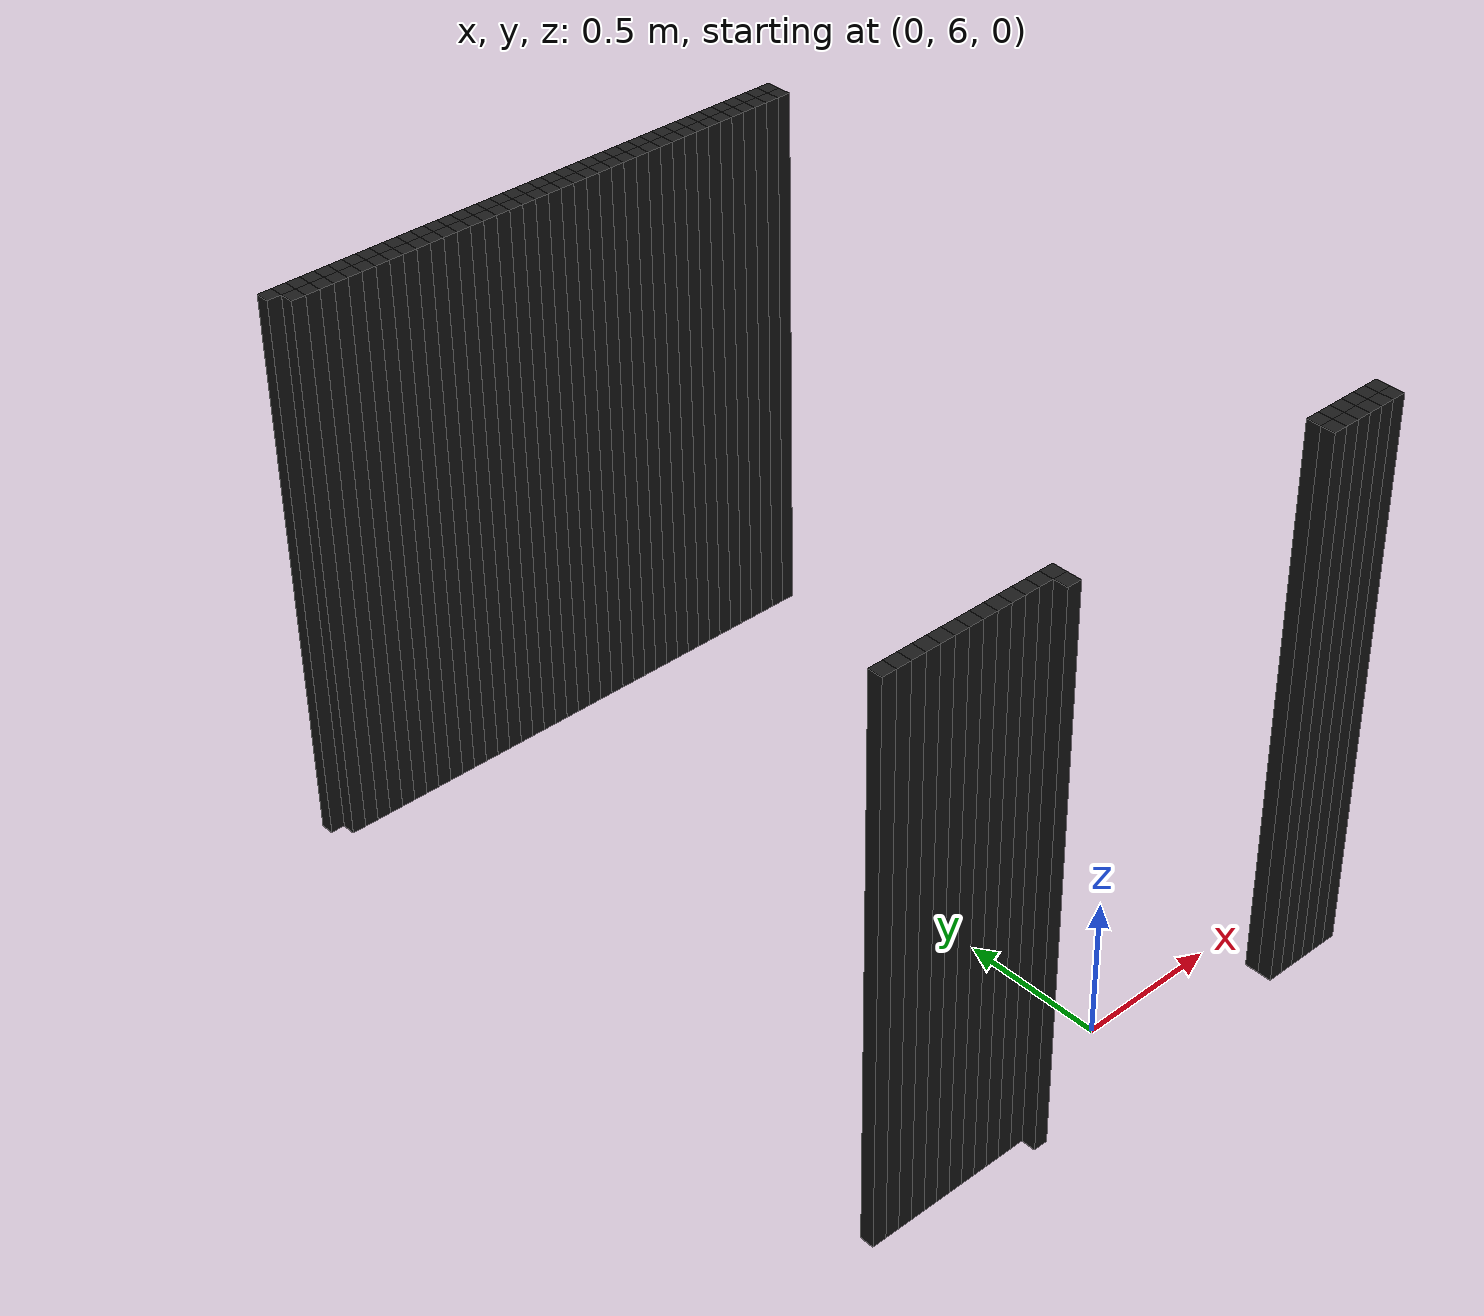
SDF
<sdf version="1.6">
 <model name="obstacle_68_0">
  <pose>-1.1099999999999994 8.350000000000001 1.0 0 0 0</pose>
  <static>true</static>
  <link name="box_link">
   <collision name="box_collision"><geometry><box><size>0.05 0.05 2.0</size></box></geometry></collision>
   <visual name="box_visual">
    <geometry><box><size>0.05 0.05 2.0</size></box></geometry>
    <material><ambient>0 0 0 1</ambient><diffuse>0.1 0.1 0.1 1</diffuse></material>
   </visual>
  </link>
 </model>
 <model name="obstacle_69_0">
  <pose>-1.0599999999999996 8.350000000000001 1.0 0 0 0</pose>
  <static>true</static>
  <link name="box_link">
   <collision name="box_collision"><geometry><box><size>0.05 0.05 2.0</size></box></geometry></collision>
   <visual name="box_visual">
    <geometry><box><size>0.05 0.05 2.0</size></box></geometry>
    <material><ambient>0 0 0 1</ambient><diffuse>0.1 0.1 0.1 1</diffuse></material>
   </visual>
  </link>
 </model>
 <model name="obstacle_70_0">
  <pose>-1.0099999999999998 8.350000000000001 1.0 0 0 0</pose>
  <static>true</static>
  <link name="box_link">
   <collision name="box_collision"><geometry><box><size>0.05 0.05 2.0</size></box></geometry></collision>
   <visual name="box_visual">
    <geometry><box><size>0.05 0.05 2.0</size></box></geometry>
    <material><ambient>0 0 0 1</ambient><diffuse>0.1 0.1 0.1 1</diffuse></material>
   </visual>
  </link>
 </model>
 <model name="obstacle_71_0">
  <pose>-0.9599999999999995 8.350000000000001 1.0 0 0 0</pose>
  <static>true</static>
  <link name="box_link">
   <collision name="box_collision"><geometry><box><size>0.05 0.05 2.0</size></box></geometry></collision>
   <visual name="box_visual">
    <geometry><box><size>0.05 0.05 2.0</size></box></geometry>
    <material><ambient>0 0 0 1</ambient><diffuse>0.1 0.1 0.1 1</diffuse></material>
   </visual>
  </link>
 </model>
 <model name="obstacle_72_0">
  <pose>-0.9099999999999997 8.350000000000001 1.0 0 0 0</pose>
  <static>true</static>
  <link name="box_link">
   <collision name="box_collision"><geometry><box><size>0.05 0.05 2.0</size></box></geometry></collision>
   <visual name="box_visual">
    <geometry><box><size>0.05 0.05 2.0</size></box></geometry>
    <material><ambient>0 0 0 1</ambient><diffuse>0.1 0.1 0.1 1</diffuse></material>
   </visual>
  </link>
 </model>
 <model name="obstacle_73_0">
  <pose>-0.8599999999999994 8.350000000000001 1.0 0 0 0</pose>
  <static>true</static>
  <link name="box_link">
   <collision name="box_collision"><geometry><box><size>0.05 0.05 2.0</size></box></geometry></collision>
   <visual name="box_visual">
    <geometry><box><size>0.05 0.05 2.0</size></box></geometry>
    <material><ambient>0 0 0 1</ambient><diffuse>0.1 0.1 0.1 1</diffuse></material>
   </visual>
  </link>
 </model>
 <model name="obstacle_74_0">
  <pose>-0.8099999999999996 8.350000000000001 1.0 0 0 0</pose>
  <static>true</static>
  <link name="box_link">
   <collision name="box_collision"><geometry><box><size>0.05 0.05 2.0</size></box></geometry></collision>
   <visual name="box_visual">
    <geometry><box><size>0.05 0.05 2.0</size></box></geometry>
    <material><ambient>0 0 0 1</ambient><diffuse>0.1 0.1 0.1 1</diffuse></material>
   </visual>
  </link>
 </model>
 <model name="obstacle_75_0">
  <pose>-0.7599999999999998 8.350000000000001 1.0 0 0 0</pose>
  <static>true</static>
  <link name="box_link">
   <collision name="box_collision"><geometry><box><size>0.05 0.05 2.0</size></box></geometry></collision>
   <visual name="box_visual">
    <geometry><box><size>0.05 0.05 2.0</size></box></geometry>
    <material><ambient>0 0 0 1</ambient><diffuse>0.1 0.1 0.1 1</diffuse></material>
   </visual>
  </link>
 </model>
 <model name="obstacle_76_0">
  <pose>-0.7099999999999995 8.350000000000001 1.0 0 0 0</pose>
  <static>true</static>
  <link name="box_link">
   <collision name="box_collision"><geometry><box><size>0.05 0.05 2.0</size></box></geometry></collision>
   <visual name="box_visual">
    <geometry><box><size>0.05 0.05 2.0</size></box></geometry>
    <material><ambient>0 0 0 1</ambient><diffuse>0.1 0.1 0.1 1</diffuse></material>
   </visual>
  </link>
 </model>
 <model name="obstacle_77_0">
  <pose>-0.6599999999999997 8.350000000000001 1.0 0 0 0</pose>
  <static>true</static>
  <link name="box_link">
   <collision name="box_collision"><geometry><box><size>0.05 0.05 2.0</size></box></geometry></collision>
   <visual name="box_visual">
    <geometry><box><size>0.05 0.05 2.0</size></box></geometry>
    <material><ambient>0 0 0 1</ambient><diffuse>0.1 0.1 0.1 1</diffuse></material>
   </visual>
  </link>
 </model>
 <model name="obstacle_78_0">
  <pose>-0.6099999999999994 8.350000000000001 1.0 0 0 0</pose>
  <static>true</static>
  <link name="box_link">
   <collision name="box_collision"><geometry><box><size>0.05 0.05 2.0</size></box></geometry></collision>
   <visual name="box_visual">
    <geometry><box><size>0.05 0.05 2.0</size></box></geometry>
    <material><ambient>0 0 0 1</ambient><diffuse>0.1 0.1 0.1 1</diffuse></material>
   </visual>
  </link>
 </model>
 <model name="obstacle_79_0">
  <pose>-0.5599999999999996 8.350000000000001 1.0 0 0 0</pose>
  <static>true</static>
  <link name="box_link">
   <collision name="box_collision"><geometry><box><size>0.05 0.05 2.0</size></box></geometry></collision>
   <visual name="box_visual">
    <geometry><box><size>0.05 0.05 2.0</size></box></geometry>
    <material><ambient>0 0 0 1</ambient><diffuse>0.1 0.1 0.1 1</diffuse></material>
   </visual>
  </link>
 </model>
 <model name="obstacle_80_0">
  <pose>-0.5099999999999998 8.350000000000001 1.0 0 0 0</pose>
  <static>true</static>
  <link name="box_link">
   <collision name="box_collision"><geometry><box><size>0.05 0.05 2.0</size></box></geometry></collision>
   <visual name="box_visual">
    <geometry><box><size>0.05 0.05 2.0</size></box></geometry>
    <material><ambient>0 0 0 1</ambient><diffuse>0.1 0.1 0.1 1</diffuse></material>
   </visual>
  </link>
 </model>
 <model name="obstacle_81_0">
  <pose>-0.45999999999999996 8.350000000000001 1.0 0 0 0</pose>
  <static>true</static>
  <link name="box_link">
   <collision name="box_collision"><geometry><box><size>0.05 0.05 2.0</size></box></geometry></collision>
   <visual name="box_visual">
    <geometry><box><size>0.05 0.05 2.0</size></box></geometry>
    <material><ambient>0 0 0 1</ambient><diffuse>0.1 0.1 0.1 1</diffuse></material>
   </visual>
  </link>
 </model>
 <model name="obstacle_82_0">
  <pose>-0.40999999999999925 8.350000000000001 1.0 0 0 0</pose>
  <static>true</static>
  <link name="box_link">
   <collision name="box_collision"><geometry><box><size>0.05 0.05 2.0</size></box></geometry></collision>
   <visual name="box_visual">
    <geometry><box><size>0.05 0.05 2.0</size></box></geometry>
    <material><ambient>0 0 0 1</ambient><diffuse>0.1 0.1 0.1 1</diffuse></material>
   </visual>
  </link>
 </model>
 <model name="obstacle_83_0">
  <pose>-0.35999999999999943 8.350000000000001 1.0 0 0 0</pose>
  <static>true</static>
  <link name="box_link">
   <collision name="box_collision"><geometry><box><size>0.05 0.05 2.0</size></box></geometry></collision>
   <visual name="box_visual">
    <geometry><box><size>0.05 0.05 2.0</size></box></geometry>
    <material><ambient>0 0 0 1</ambient><diffuse>0.1 0.1 0.1 1</diffuse></material>
   </visual>
  </link>
 </model>
 <model name="obstacle_84_0">
  <pose>-0.3099999999999996 8.350000000000001 1.0 0 0 0</pose>
  <static>true</static>
  <link name="box_link">
   <collision name="box_collision"><geometry><box><size>0.05 0.05 2.0</size></box></geometry></collision>
   <visual name="box_visual">
    <geometry><box><size>0.05 0.05 2.0</size></box></geometry>
    <material><ambient>0 0 0 1</ambient><diffuse>0.1 0.1 0.1 1</diffuse></material>
   </visual>
  </link>
 </model>
 <model name="obstacle_85_0">
  <pose>-0.2599999999999998 8.350000000000001 1.0 0 0 0</pose>
  <static>true</static>
  <link name="box_link">
   <collision name="box_collision"><geometry><box><size>0.05 0.05 2.0</size></box></geometry></collision>
   <visual name="box_visual">
    <geometry><box><size>0.05 0.05 2.0</size></box></geometry>
    <material><ambient>0 0 0 1</ambient><diffuse>0.1 0.1 0.1 1</diffuse></material>
   </visual>
  </link>
 </model>
 <model name="obstacle_86_0">
  <pose>-0.20999999999999996 8.350000000000001 1.0 0 0 0</pose>
  <static>true</static>
  <link name="box_link">
   <collision name="box_collision"><geometry><box><size>0.05 0.05 2.0</size></box></geometry></collision>
   <visual name="box_visual">
    <geometry><box><size>0.05 0.05 2.0</size></box></geometry>
    <material><ambient>0 0 0 1</ambient><diffuse>0.1 0.1 0.1 1</diffuse></material>
   </visual>
  </link>
 </model>
 <model name="obstacle_87_0">
  <pose>-0.15999999999999925 8.350000000000001 1.0 0 0 0</pose>
  <static>true</static>
  <link name="box_link">
   <collision name="box_collision"><geometry><box><size>0.05 0.05 2.0</size></box></geometry></collision>
   <visual name="box_visual">
    <geometry><box><size>0.05 0.05 2.0</size></box></geometry>
    <material><ambient>0 0 0 1</ambient><diffuse>0.1 0.1 0.1 1</diffuse></material>
   </visual>
  </link>
 </model>
 <model name="obstacle_88_0">
  <pose>-0.10999999999999943 8.350000000000001 1.0 0 0 0</pose>
  <static>true</static>
  <link name="box_link">
   <collision name="box_collision"><geometry><box><size>0.05 0.05 2.0</size></box></geometry></collision>
   <visual name="box_visual">
    <geometry><box><size>0.05 0.05 2.0</size></box></geometry>
    <material><ambient>0 0 0 1</ambient><diffuse>0.1 0.1 0.1 1</diffuse></material>
   </visual>
  </link>
 </model>
 <model name="obstacle_89_0">
  <pose>-0.05999999999999961 8.350000000000001 1.0 0 0 0</pose>
  <static>true</static>
  <link name="box_link">
   <collision name="box_collision"><geometry><box><size>0.05 0.05 2.0</size></box></geometry></collision>
   <visual name="box_visual">
    <geometry><box><size>0.05 0.05 2.0</size></box></geometry>
    <material><ambient>0 0 0 1</ambient><diffuse>0.1 0.1 0.1 1</diffuse></material>
   </visual>
  </link>
 </model>
 <model name="obstacle_90_0">
  <pose>-0.009999999999999787 8.350000000000001 1.0 0 0 0</pose>
  <static>true</static>
  <link name="box_link">
   <collision name="box_collision"><geometry><box><size>0.05 0.05 2.0</size></box></geometry></collision>
   <visual name="box_visual">
    <geometry><box><size>0.05 0.05 2.0</size></box></geometry>
    <material><ambient>0 0 0 1</ambient><diffuse>0.1 0.1 0.1 1</diffuse></material>
   </visual>
  </link>
 </model>
 <model name="obstacle_91_0">
  <pose>0.040000000000000036 8.350000000000001 1.0 0 0 0</pose>
  <static>true</static>
  <link name="box_link">
   <collision name="box_collision"><geometry><box><size>0.05 0.05 2.0</size></box></geometry></collision>
   <visual name="box_visual">
    <geometry><box><size>0.05 0.05 2.0</size></box></geometry>
    <material><ambient>0 0 0 1</ambient><diffuse>0.1 0.1 0.1 1</diffuse></material>
   </visual>
  </link>
 </model>
 <model name="obstacle_92_0">
  <pose>0.09000000000000075 8.350000000000001 1.0 0 0 0</pose>
  <static>true</static>
  <link name="box_link">
   <collision name="box_collision"><geometry><box><size>0.05 0.05 2.0</size></box></geometry></collision>
   <visual name="box_visual">
    <geometry><box><size>0.05 0.05 2.0</size></box></geometry>
    <material><ambient>0 0 0 1</ambient><diffuse>0.1 0.1 0.1 1</diffuse></material>
   </visual>
  </link>
 </model>
 <model name="obstacle_93_0">
  <pose>0.14000000000000057 8.350000000000001 1.0 0 0 0</pose>
  <static>true</static>
  <link name="box_link">
   <collision name="box_collision"><geometry><box><size>0.05 0.05 2.0</size></box></geometry></collision>
   <visual name="box_visual">
    <geometry><box><size>0.05 0.05 2.0</size></box></geometry>
    <material><ambient>0 0 0 1</ambient><diffuse>0.1 0.1 0.1 1</diffuse></material>
   </visual>
  </link>
 </model>
 <model name="obstacle_94_0">
  <pose>0.1900000000000004 8.350000000000001 1.0 0 0 0</pose>
  <static>true</static>
  <link name="box_link">
   <collision name="box_collision"><geometry><box><size>0.05 0.05 2.0</size></box></geometry></collision>
   <visual name="box_visual">
    <geometry><box><size>0.05 0.05 2.0</size></box></geometry>
    <material><ambient>0 0 0 1</ambient><diffuse>0.1 0.1 0.1 1</diffuse></material>
   </visual>
  </link>
 </model>
 <model name="obstacle_95_0">
  <pose>0.2400000000000002 8.350000000000001 1.0 0 0 0</pose>
  <static>true</static>
  <link name="box_link">
   <collision name="box_collision"><geometry><box><size>0.05 0.05 2.0</size></box></geometry></collision>
   <visual name="box_visual">
    <geometry><box><size>0.05 0.05 2.0</size></box></geometry>
    <material><ambient>0 0 0 1</ambient><diffuse>0.1 0.1 0.1 1</diffuse></material>
   </visual>
  </link>
 </model>
 <model name="obstacle_96_0">
  <pose>0.2900000000000009 8.350000000000001 1.0 0 0 0</pose>
  <static>true</static>
  <link name="box_link">
   <collision name="box_collision"><geometry><box><size>0.05 0.05 2.0</size></box></geometry></collision>
   <visual name="box_visual">
    <geometry><box><size>0.05 0.05 2.0</size></box></geometry>
    <material><ambient>0 0 0 1</ambient><diffuse>0.1 0.1 0.1 1</diffuse></material>
   </visual>
  </link>
 </model>
 <model name="obstacle_97_0">
  <pose>0.34000000000000075 8.350000000000001 1.0 0 0 0</pose>
  <static>true</static>
  <link name="box_link">
   <collision name="box_collision"><geometry><box><size>0.05 0.05 2.0</size></box></geometry></collision>
   <visual name="box_visual">
    <geometry><box><size>0.05 0.05 2.0</size></box></geometry>
    <material><ambient>0 0 0 1</ambient><diffuse>0.1 0.1 0.1 1</diffuse></material>
   </visual>
  </link>
 </model>
 <model name="obstacle_98_0">
  <pose>0.39000000000000057 8.350000000000001 1.0 0 0 0</pose>
  <static>true</static>
  <link name="box_link">
   <collision name="box_collision"><geometry><box><size>0.05 0.05 2.0</size></box></geometry></collision>
   <visual name="box_visual">
    <geometry><box><size>0.05 0.05 2.0</size></box></geometry>
    <material><ambient>0 0 0 1</ambient><diffuse>0.1 0.1 0.1 1</diffuse></material>
   </visual>
  </link>
 </model>
 <model name="obstacle_99_0">
  <pose>0.4400000000000004 8.350000000000001 1.0 0 0 0</pose>
  <static>true</static>
  <link name="box_link">
   <collision name="box_collision"><geometry><box><size>0.05 0.05 2.0</size></box></geometry></collision>
   <visual name="box_visual">
    <geometry><box><size>0.05 0.05 2.0</size></box></geometry>
    <material><ambient>0 0 0 1</ambient><diffuse>0.1 0.1 0.1 1</diffuse></material>
   </visual>
  </link>
 </model>
 <model name="obstacle_100_0">
  <pose>0.4900000000000002 8.350000000000001 1.0 0 0 0</pose>
  <static>true</static>
  <link name="box_link">
   <collision name="box_collision"><geometry><box><size>0.05 0.05 2.0</size></box></geometry></collision>
   <visual name="box_visual">
    <geometry><box><size>0.05 0.05 2.0</size></box></geometry>
    <material><ambient>0 0 0 1</ambient><diffuse>0.1 0.1 0.1 1</diffuse></material>
   </visual>
  </link>
 </model>
 <model name="obstacle_101_0">
  <pose>0.5400000000000009 8.350000000000001 1.0 0 0 0</pose>
  <static>true</static>
  <link name="box_link">
   <collision name="box_collision"><geometry><box><size>0.05 0.05 2.0</size></box></geometry></collision>
   <visual name="box_visual">
    <geometry><box><size>0.05 0.05 2.0</size></box></geometry>
    <material><ambient>0 0 0 1</ambient><diffuse>0.1 0.1 0.1 1</diffuse></material>
   </visual>
  </link>
 </model>
 <model name="obstacle_102_0">
  <pose>0.5900000000000007 8.350000000000001 1.0 0 0 0</pose>
  <static>true</static>
  <link name="box_link">
   <collision name="box_collision"><geometry><box><size>0.05 0.05 2.0</size></box></geometry></collision>
   <visual name="box_visual">
    <geometry><box><size>0.05 0.05 2.0</size></box></geometry>
    <material><ambient>0 0 0 1</ambient><diffuse>0.1 0.1 0.1 1</diffuse></material>
   </visual>
  </link>
 </model>
 <model name="obstacle_103_0">
  <pose>0.6400000000000006 8.350000000000001 1.0 0 0 0</pose>
  <static>true</static>
  <link name="box_link">
   <collision name="box_collision"><geometry><box><size>0.05 0.05 2.0</size></box></geometry></collision>
   <visual name="box_visual">
    <geometry><box><size>0.05 0.05 2.0</size></box></geometry>
    <material><ambient>0 0 0 1</ambient><diffuse>0.1 0.1 0.1 1</diffuse></material>
   </visual>
  </link>
 </model>
 <model name="obstacle_104_0">
  <pose>0.6900000000000004 8.350000000000001 1.0 0 0 0</pose>
  <static>true</static>
  <link name="box_link">
   <collision name="box_collision"><geometry><box><size>0.05 0.05 2.0</size></box></geometry></collision>
   <visual name="box_visual">
    <geometry><box><size>0.05 0.05 2.0</size></box></geometry>
    <material><ambient>0 0 0 1</ambient><diffuse>0.1 0.1 0.1 1</diffuse></material>
   </visual>
  </link>
 </model>
 <model name="obstacle_105_0">
  <pose>0.7400000000000002 8.350000000000001 1.0 0 0 0</pose>
  <static>true</static>
  <link name="box_link">
   <collision name="box_collision"><geometry><box><size>0.05 0.05 2.0</size></box></geometry></collision>
   <visual name="box_visual">
    <geometry><box><size>0.05 0.05 2.0</size></box></geometry>
    <material><ambient>0 0 0 1</ambient><diffuse>0.1 0.1 0.1 1</diffuse></material>
   </visual>
  </link>
 </model>
 <model name="obstacle_106_0">
  <pose>0.7900000000000009 8.350000000000001 1.0 0 0 0</pose>
  <static>true</static>
  <link name="box_link">
   <collision name="box_collision"><geometry><box><size>0.05 0.05 2.0</size></box></geometry></collision>
   <visual name="box_visual">
    <geometry><box><size>0.05 0.05 2.0</size></box></geometry>
    <material><ambient>0 0 0 1</ambient><diffuse>0.1 0.1 0.1 1</diffuse></material>
   </visual>
  </link>
 </model>
 <model name="obstacle_107_0">
  <pose>0.8400000000000007 8.350000000000001 1.0 0 0 0</pose>
  <static>true</static>
  <link name="box_link">
   <collision name="box_collision"><geometry><box><size>0.05 0.05 2.0</size></box></geometry></collision>
   <visual name="box_visual">
    <geometry><box><size>0.05 0.05 2.0</size></box></geometry>
    <material><ambient>0 0 0 1</ambient><diffuse>0.1 0.1 0.1 1</diffuse></material>
   </visual>
  </link>
 </model>
 <model name="obstacle_69_1">
  <pose>-1.0599999999999996 8.3 1.0 0 0 0</pose>
  <static>true</static>
  <link name="box_link">
   <collision name="box_collision"><geometry><box><size>0.05 0.05 2.0</size></box></geometry></collision>
   <visual name="box_visual">
    <geometry><box><size>0.05 0.05 2.0</size></box></geometry>
    <material><ambient>0 0 0 1</ambient><diffuse>0.1 0.1 0.1 1</diffuse></material>
   </visual>
  </link>
 </model>
 <model name="obstacle_70_1">
  <pose>-1.0099999999999998 8.3 1.0 0 0 0</pose>
  <static>true</static>
  <link name="box_link">
   <collision name="box_collision"><geometry><box><size>0.05 0.05 2.0</size></box></geometry></collision>
   <visual name="box_visual">
    <geometry><box><size>0.05 0.05 2.0</size></box></geometry>
    <material><ambient>0 0 0 1</ambient><diffuse>0.1 0.1 0.1 1</diffuse></material>
   </visual>
  </link>
 </model>
 <model name="obstacle_71_1">
  <pose>-0.9599999999999995 8.3 1.0 0 0 0</pose>
  <static>true</static>
  <link name="box_link">
   <collision name="box_collision"><geometry><box><size>0.05 0.05 2.0</size></box></geometry></collision>
   <visual name="box_visual">
    <geometry><box><size>0.05 0.05 2.0</size></box></geometry>
    <material><ambient>0 0 0 1</ambient><diffuse>0.1 0.1 0.1 1</diffuse></material>
   </visual>
  </link>
 </model>
 <model name="obstacle_72_1">
  <pose>-0.9099999999999997 8.3 1.0 0 0 0</pose>
  <static>true</static>
  <link name="box_link">
   <collision name="box_collision"><geometry><box><size>0.05 0.05 2.0</size></box></geometry></collision>
   <visual name="box_visual">
    <geometry><box><size>0.05 0.05 2.0</size></box></geometry>
    <material><ambient>0 0 0 1</ambient><diffuse>0.1 0.1 0.1 1</diffuse></material>
   </visual>
  </link>
 </model>
 <model name="obstacle_73_1">
  <pose>-0.8599999999999994 8.3 1.0 0 0 0</pose>
  <static>true</static>
  <link name="box_link">
   <collision name="box_collision"><geometry><box><size>0.05 0.05 2.0</size></box></geometry></collision>
   <visual name="box_visual">
    <geometry><box><size>0.05 0.05 2.0</size></box></geometry>
    <material><ambient>0 0 0 1</ambient><diffuse>0.1 0.1 0.1 1</diffuse></material>
   </visual>
  </link>
 </model>
 <model name="obstacle_74_1">
  <pose>-0.8099999999999996 8.3 1.0 0 0 0</pose>
  <static>true</static>
  <link name="box_link">
   <collision name="box_collision"><geometry><box><size>0.05 0.05 2.0</size></box></geometry></collision>
   <visual name="box_visual">
    <geometry><box><size>0.05 0.05 2.0</size></box></geometry>
    <material><ambient>0 0 0 1</ambient><diffuse>0.1 0.1 0.1 1</diffuse></material>
   </visual>
  </link>
 </model>
 <model name="obstacle_75_1">
  <pose>-0.7599999999999998 8.3 1.0 0 0 0</pose>
  <static>true</static>
  <link name="box_link">
   <collision name="box_collision"><geometry><box><size>0.05 0.05 2.0</size></box></geometry></collision>
   <visual name="box_visual">
    <geometry><box><size>0.05 0.05 2.0</size></box></geometry>
    <material><ambient>0 0 0 1</ambient><diffuse>0.1 0.1 0.1 1</diffuse></material>
   </visual>
  </link>
 </model>
 <model name="obstacle_76_1">
  <pose>-0.7099999999999995 8.3 1.0 0 0 0</pose>
  <static>true</static>
  <link name="box_link">
   <collision name="box_collision"><geometry><box><size>0.05 0.05 2.0</size></box></geometry></collision>
   <visual name="box_visual">
    <geometry><box><size>0.05 0.05 2.0</size></box></geometry>
    <material><ambient>0 0 0 1</ambient><diffuse>0.1 0.1 0.1 1</diffuse></material>
   </visual>
  </link>
 </model>
 <model name="obstacle_77_1">
  <pose>-0.6599999999999997 8.3 1.0 0 0 0</pose>
  <static>true</static>
  <link name="box_link">
   <collision name="box_collision"><geometry><box><size>0.05 0.05 2.0</size></box></geometry></collision>
   <visual name="box_visual">
    <geometry><box><size>0.05 0.05 2.0</size></box></geometry>
    <material><ambient>0 0 0 1</ambient><diffuse>0.1 0.1 0.1 1</diffuse></material>
   </visual>
  </link>
 </model>
 <model name="obstacle_78_1">
  <pose>-0.6099999999999994 8.3 1.0 0 0 0</pose>
  <static>true</static>
  <link name="box_link">
   <collision name="box_collision"><geometry><box><size>0.05 0.05 2.0</size></box></geometry></collision>
   <visual name="box_visual">
    <geometry><box><size>0.05 0.05 2.0</size></box></geometry>
    <material><ambient>0 0 0 1</ambient><diffuse>0.1 0.1 0.1 1</diffuse></material>
   </visual>
  </link>
 </model>
 <model name="obstacle_79_1">
  <pose>-0.5599999999999996 8.3 1.0 0 0 0</pose>
  <static>true</static>
  <link name="box_link">
   <collision name="box_collision"><geometry><box><size>0.05 0.05 2.0</size></box></geometry></collision>
   <visual name="box_visual">
    <geometry><box><size>0.05 0.05 2.0</size></box></geometry>
    <material><ambient>0 0 0 1</ambient><diffuse>0.1 0.1 0.1 1</diffuse></material>
   </visual>
  </link>
 </model>
 <model name="obstacle_80_1">
  <pose>-0.5099999999999998 8.3 1.0 0 0 0</pose>
  <static>true</static>
  <link name="box_link">
   <collision name="box_collision"><geometry><box><size>0.05 0.05 2.0</size></box></geometry></collision>
   <visual name="box_visual">
    <geometry><box><size>0.05 0.05 2.0</size></box></geometry>
    <material><ambient>0 0 0 1</ambient><diffuse>0.1 0.1 0.1 1</diffuse></material>
   </visual>
  </link>
 </model>
 <model name="obstacle_81_1">
  <pose>-0.45999999999999996 8.3 1.0 0 0 0</pose>
  <static>true</static>
  <link name="box_link">
   <collision name="box_collision"><geometry><box><size>0.05 0.05 2.0</size></box></geometry></collision>
   <visual name="box_visual">
    <geometry><box><size>0.05 0.05 2.0</size></box></geometry>
    <material><ambient>0 0 0 1</ambient><diffuse>0.1 0.1 0.1 1</diffuse></material>
   </visual>
  </link>
 </model>
 <model name="obstacle_82_1">
  <pose>-0.40999999999999925 8.3 1.0 0 0 0</pose>
  <static>true</static>
  <link name="box_link">
   <collision name="box_collision"><geometry><box><size>0.05 0.05 2.0</size></box></geometry></collision>
   <visual name="box_visual">
    <geometry><box><size>0.05 0.05 2.0</size></box></geometry>
    <material><ambient>0 0 0 1</ambient><diffuse>0.1 0.1 0.1 1</diffuse></material>
   </visual>
  </link>
 </model>
 <model name="obstacle_83_1">
  <pose>-0.35999999999999943 8.3 1.0 0 0 0</pose>
  <static>true</static>
  <link name="box_link">
   <collision name="box_collision"><geometry><box><size>0.05 0.05 2.0</size></box></geometry></collision>
   <visual name="box_visual">
    <geometry><box><size>0.05 0.05 2.0</size></box></geometry>
    <material><ambient>0 0 0 1</ambient><diffuse>0.1 0.1 0.1 1</diffuse></material>
   </visual>
  </link>
 </model>
 <model name="obstacle_84_1">
  <pose>-0.3099999999999996 8.3 1.0 0 0 0</pose>
  <static>true</static>
  <link name="box_link">
   <collision name="box_collision"><geometry><box><size>0.05 0.05 2.0</size></box></geometry></collision>
   <visual name="box_visual">
    <geometry><box><size>0.05 0.05 2.0</size></box></geometry>
    <material><ambient>0 0 0 1</ambient><diffuse>0.1 0.1 0.1 1</diffuse></material>
   </visual>
  </link>
 </model>
 <model name="obstacle_85_1">
  <pose>-0.2599999999999998 8.3 1.0 0 0 0</pose>
  <static>true</static>
  <link name="box_link">
   <collision name="box_collision"><geometry><box><size>0.05 0.05 2.0</size></box></geometry></collision>
   <visual name="box_visual">
    <geometry><box><size>0.05 0.05 2.0</size></box></geometry>
    <material><ambient>0 0 0 1</ambient><diffuse>0.1 0.1 0.1 1</diffuse></material>
   </visual>
  </link>
 </model>
 <model name="obstacle_86_1">
  <pose>-0.20999999999999996 8.3 1.0 0 0 0</pose>
  <static>true</static>
  <link name="box_link">
   <collision name="box_collision"><geometry><box><size>0.05 0.05 2.0</size></box></geometry></collision>
   <visual name="box_visual">
    <geometry><box><size>0.05 0.05 2.0</size></box></geometry>
    <material><ambient>0 0 0 1</ambient><diffuse>0.1 0.1 0.1 1</diffuse></material>
   </visual>
  </link>
 </model>
 <model name="obstacle_87_1">
  <pose>-0.15999999999999925 8.3 1.0 0 0 0</pose>
  <static>true</static>
  <link name="box_link">
   <collision name="box_collision"><geometry><box><size>0.05 0.05 2.0</size></box></geometry></collision>
   <visual name="box_visual">
    <geometry><box><size>0.05 0.05 2.0</size></box></geometry>
    <material><ambient>0 0 0 1</ambient><diffuse>0.1 0.1 0.1 1</diffuse></material>
   </visual>
  </link>
 </model>
 <model name="obstacle_88_1">
  <pose>-0.10999999999999943 8.3 1.0 0 0 0</pose>
  <static>true</static>
  <link name="box_link">
   <collision name="box_collision"><geometry><box><size>0.05 0.05 2.0</size></box></geometry></collision>
   <visual name="box_visual">
    <geometry><box><size>0.05 0.05 2.0</size></box></geometry>
    <material><ambient>0 0 0 1</ambient><diffuse>0.1 0.1 0.1 1</diffuse></material>
   </visual>
  </link>
 </model>
 <model name="obstacle_89_1">
  <pose>-0.05999999999999961 8.3 1.0 0 0 0</pose>
  <static>true</static>
  <link name="box_link">
   <collision name="box_collision"><geometry><box><size>0.05 0.05 2.0</size></box></geometry></collision>
   <visual name="box_visual">
    <geometry><box><size>0.05 0.05 2.0</size></box></geometry>
    <material><ambient>0 0 0 1</ambient><diffuse>0.1 0.1 0.1 1</diffuse></material>
   </visual>
  </link>
 </model>
 <model name="obstacle_90_1">
  <pose>-0.009999999999999787 8.3 1.0 0 0 0</pose>
  <static>true</static>
  <link name="box_link">
   <collision name="box_collision"><geometry><box><size>0.05 0.05 2.0</size></box></geometry></collision>
   <visual name="box_visual">
    <geometry><box><size>0.05 0.05 2.0</size></box></geometry>
    <material><ambient>0 0 0 1</ambient><diffuse>0.1 0.1 0.1 1</diffuse></material>
   </visual>
  </link>
 </model>
 <model name="obstacle_91_1">
  <pose>0.040000000000000036 8.3 1.0 0 0 0</pose>
  <static>true</static>
  <link name="box_link">
   <collision name="box_collision"><geometry><box><size>0.05 0.05 2.0</size></box></geometry></collision>
   <visual name="box_visual">
    <geometry><box><size>0.05 0.05 2.0</size></box></geometry>
    <material><ambient>0 0 0 1</ambient><diffuse>0.1 0.1 0.1 1</diffuse></material>
   </visual>
  </link>
 </model>
 <model name="obstacle_92_1">
  <pose>0.09000000000000075 8.3 1.0 0 0 0</pose>
  <static>true</static>
  <link name="box_link">
   <collision name="box_collision"><geometry><box><size>0.05 0.05 2.0</size></box></geometry></collision>
   <visual name="box_visual">
    <geometry><box><size>0.05 0.05 2.0</size></box></geometry>
    <material><ambient>0 0 0 1</ambient><diffuse>0.1 0.1 0.1 1</diffuse></material>
   </visual>
  </link>
 </model>
 <model name="obstacle_93_1">
  <pose>0.14000000000000057 8.3 1.0 0 0 0</pose>
  <static>true</static>
  <link name="box_link">
   <collision name="box_collision"><geometry><box><size>0.05 0.05 2.0</size></box></geometry></collision>
   <visual name="box_visual">
    <geometry><box><size>0.05 0.05 2.0</size></box></geometry>
    <material><ambient>0 0 0 1</ambient><diffuse>0.1 0.1 0.1 1</diffuse></material>
   </visual>
  </link>
 </model>
 <model name="obstacle_94_1">
  <pose>0.1900000000000004 8.3 1.0 0 0 0</pose>
  <static>true</static>
  <link name="box_link">
   <collision name="box_collision"><geometry><box><size>0.05 0.05 2.0</size></box></geometry></collision>
   <visual name="box_visual">
    <geometry><box><size>0.05 0.05 2.0</size></box></geometry>
    <material><ambient>0 0 0 1</ambient><diffuse>0.1 0.1 0.1 1</diffuse></material>
   </visual>
  </link>
 </model>
 <model name="obstacle_95_1">
  <pose>0.2400000000000002 8.3 1.0 0 0 0</pose>
  <static>true</static>
  <link name="box_link">
   <collision name="box_collision"><geometry><box><size>0.05 0.05 2.0</size></box></geometry></collision>
   <visual name="box_visual">
    <geometry><box><size>0.05 0.05 2.0</size></box></geometry>
    <material><ambient>0 0 0 1</ambient><diffuse>0.1 0.1 0.1 1</diffuse></material>
   </visual>
  </link>
 </model>
 <model name="obstacle_96_1">
  <pose>0.2900000000000009 8.3 1.0 0 0 0</pose>
  <static>true</static>
  <link name="box_link">
   <collision name="box_collision"><geometry><box><size>0.05 0.05 2.0</size></box></geometry></collision>
   <visual name="box_visual">
    <geometry><box><size>0.05 0.05 2.0</size></box></geometry>
    <material><ambient>0 0 0 1</ambient><diffuse>0.1 0.1 0.1 1</diffuse></material>
   </visual>
  </link>
 </model>
 <model name="obstacle_97_1">
  <pose>0.34000000000000075 8.3 1.0 0 0 0</pose>
  <static>true</static>
  <link name="box_link">
   <collision name="box_collision"><geometry><box><size>0.05 0.05 2.0</size></box></geometry></collision>
   <visual name="box_visual">
    <geometry><box><size>0.05 0.05 2.0</size></box></geometry>
    <material><ambient>0 0 0 1</ambient><diffuse>0.1 0.1 0.1 1</diffuse></material>
   </visual>
  </link>
 </model>
 <model name="obstacle_98_1">
  <pose>0.39000000000000057 8.3 1.0 0 0 0</pose>
  <static>true</static>
  <link name="box_link">
   <collision name="box_collision"><geometry><box><size>0.05 0.05 2.0</size></box></geometry></collision>
   <visual name="box_visual">
    <geometry><box><size>0.05 0.05 2.0</size></box></geometry>
    <material><ambient>0 0 0 1</ambient><diffuse>0.1 0.1 0.1 1</diffuse></material>
   </visual>
  </link>
 </model>
 <model name="obstacle_99_1">
  <pose>0.4400000000000004 8.3 1.0 0 0 0</pose>
  <static>true</static>
  <link name="box_link">
   <collision name="box_collision"><geometry><box><size>0.05 0.05 2.0</size></box></geometry></collision>
   <visual name="box_visual">
    <geometry><box><size>0.05 0.05 2.0</size></box></geometry>
    <material><ambient>0 0 0 1</ambient><diffuse>0.1 0.1 0.1 1</diffuse></material>
   </visual>
  </link>
 </model>
 <model name="obstacle_100_1">
  <pose>0.4900000000000002 8.3 1.0 0 0 0</pose>
  <static>true</static>
  <link name="box_link">
   <collision name="box_collision"><geometry><box><size>0.05 0.05 2.0</size></box></geometry></collision>
   <visual name="box_visual">
    <geometry><box><size>0.05 0.05 2.0</size></box></geometry>
    <material><ambient>0 0 0 1</ambient><diffuse>0.1 0.1 0.1 1</diffuse></material>
   </visual>
  </link>
 </model>
 <model name="obstacle_101_1">
  <pose>0.5400000000000009 8.3 1.0 0 0 0</pose>
  <static>true</static>
  <link name="box_link">
   <collision name="box_collision"><geometry><box><size>0.05 0.05 2.0</size></box></geometry></collision>
   <visual name="box_visual">
    <geometry><box><size>0.05 0.05 2.0</size></box></geometry>
    <material><ambient>0 0 0 1</ambient><diffuse>0.1 0.1 0.1 1</diffuse></material>
   </visual>
  </link>
 </model>
 <model name="obstacle_102_1">
  <pose>0.5900000000000007 8.3 1.0 0 0 0</pose>
  <static>true</static>
  <link name="box_link">
   <collision name="box_collision"><geometry><box><size>0.05 0.05 2.0</size></box></geometry></collision>
   <visual name="box_visual">
    <geometry><box><size>0.05 0.05 2.0</size></box></geometry>
    <material><ambient>0 0 0 1</ambient><diffuse>0.1 0.1 0.1 1</diffuse></material>
   </visual>
  </link>
 </model>
 <model name="obstacle_103_1">
  <pose>0.6400000000000006 8.3 1.0 0 0 0</pose>
  <static>true</static>
  <link name="box_link">
   <collision name="box_collision"><geometry><box><size>0.05 0.05 2.0</size></box></geometry></collision>
   <visual name="box_visual">
    <geometry><box><size>0.05 0.05 2.0</size></box></geometry>
    <material><ambient>0 0 0 1</ambient><diffuse>0.1 0.1 0.1 1</diffuse></material>
   </visual>
  </link>
 </model>
 <model name="obstacle_104_1">
  <pose>0.6900000000000004 8.3 1.0 0 0 0</pose>
  <static>true</static>
  <link name="box_link">
   <collision name="box_collision"><geometry><box><size>0.05 0.05 2.0</size></box></geometry></collision>
   <visual name="box_visual">
    <geometry><box><size>0.05 0.05 2.0</size></box></geometry>
    <material><ambient>0 0 0 1</ambient><diffuse>0.1 0.1 0.1 1</diffuse></material>
   </visual>
  </link>
 </model>
 <model name="obstacle_105_1">
  <pose>0.7400000000000002 8.3 1.0 0 0 0</pose>
  <static>true</static>
  <link name="box_link">
   <collision name="box_collision"><geometry><box><size>0.05 0.05 2.0</size></box></geometry></collision>
   <visual name="box_visual">
    <geometry><box><size>0.05 0.05 2.0</size></box></geometry>
    <material><ambient>0 0 0 1</ambient><diffuse>0.1 0.1 0.1 1</diffuse></material>
   </visual>
  </link>
 </model>
 <model name="obstacle_106_1">
  <pose>0.7900000000000009 8.3 1.0 0 0 0</pose>
  <static>true</static>
  <link name="box_link">
   <collision name="box_collision"><geometry><box><size>0.05 0.05 2.0</size></box></geometry></collision>
   <visual name="box_visual">
    <geometry><box><size>0.05 0.05 2.0</size></box></geometry>
    <material><ambient>0 0 0 1</ambient><diffuse>0.1 0.1 0.1 1</diffuse></material>
   </visual>
  </link>
 </model>
 <model name="obstacle_107_1">
  <pose>0.8400000000000007 8.3 1.0 0 0 0</pose>
  <static>true</static>
  <link name="box_link">
   <collision name="box_collision"><geometry><box><size>0.05 0.05 2.0</size></box></geometry></collision>
   <visual name="box_visual">
    <geometry><box><size>0.05 0.05 2.0</size></box></geometry>
    <material><ambient>0 0 0 1</ambient><diffuse>0.1 0.1 0.1 1</diffuse></material>
   </visual>
  </link>
 </model>
 <model name="obstacle_69_50">
  <pose>-1.0599999999999996 5.8500000000000005 1.0 0 0 0</pose>
  <static>true</static>
  <link name="box_link">
   <collision name="box_collision"><geometry><box><size>0.05 0.05 2.0</size></box></geometry></collision>
   <visual name="box_visual">
    <geometry><box><size>0.05 0.05 2.0</size></box></geometry>
    <material><ambient>0 0 0 1</ambient><diffuse>0.1 0.1 0.1 1</diffuse></material>
   </visual>
  </link>
 </model>
 <model name="obstacle_70_50">
  <pose>-1.0099999999999998 5.8500000000000005 1.0 0 0 0</pose>
  <static>true</static>
  <link name="box_link">
   <collision name="box_collision"><geometry><box><size>0.05 0.05 2.0</size></box></geometry></collision>
   <visual name="box_visual">
    <geometry><box><size>0.05 0.05 2.0</size></box></geometry>
    <material><ambient>0 0 0 1</ambient><diffuse>0.1 0.1 0.1 1</diffuse></material>
   </visual>
  </link>
 </model>
 <model name="obstacle_71_50">
  <pose>-0.9599999999999995 5.8500000000000005 1.0 0 0 0</pose>
  <static>true</static>
  <link name="box_link">
   <collision name="box_collision"><geometry><box><size>0.05 0.05 2.0</size></box></geometry></collision>
   <visual name="box_visual">
    <geometry><box><size>0.05 0.05 2.0</size></box></geometry>
    <material><ambient>0 0 0 1</ambient><diffuse>0.1 0.1 0.1 1</diffuse></material>
   </visual>
  </link>
 </model>
 <model name="obstacle_72_50">
  <pose>-0.9099999999999997 5.8500000000000005 1.0 0 0 0</pose>
  <static>true</static>
  <link name="box_link">
   <collision name="box_collision"><geometry><box><size>0.05 0.05 2.0</size></box></geometry></collision>
   <visual name="box_visual">
    <geometry><box><size>0.05 0.05 2.0</size></box></geometry>
    <material><ambient>0 0 0 1</ambient><diffuse>0.1 0.1 0.1 1</diffuse></material>
   </visual>
  </link>
 </model>
 <model name="obstacle_73_50">
  <pose>-0.8599999999999994 5.8500000000000005 1.0 0 0 0</pose>
  <static>true</static>
  <link name="box_link">
   <collision name="box_collision"><geometry><box><size>0.05 0.05 2.0</size></box></geometry></collision>
   <visual name="box_visual">
    <geometry><box><size>0.05 0.05 2.0</size></box></geometry>
    <material><ambient>0 0 0 1</ambient><diffuse>0.1 0.1 0.1 1</diffuse></material>
   </visual>
  </link>
 </model>
 <model name="obstacle_74_50">
  <pose>-0.8099999999999996 5.8500000000000005 1.0 0 0 0</pose>
  <static>true</static>
  <link name="box_link">
   <collision name="box_collision"><geometry><box><size>0.05 0.05 2.0</size></box></geometry></collision>
   <visual name="box_visual">
    <geometry><box><size>0.05 0.05 2.0</size></box></geometry>
    <material><ambient>0 0 0 1</ambient><diffuse>0.1 0.1 0.1 1</diffuse></material>
   </visual>
  </link>
 </model>
 <model name="obstacle_75_50">
  <pose>-0.7599999999999998 5.8500000000000005 1.0 0 0 0</pose>
  <static>true</static>
  <link name="box_link">
   <collision name="box_collision"><geometry><box><size>0.05 0.05 2.0</size></box></geometry></collision>
   <visual name="box_visual">
    <geometry><box><size>0.05 0.05 2.0</size></box></geometry>
    <material><ambient>0 0 0 1</ambient><diffuse>0.1 0.1 0.1 1</diffuse></material>
   </visual>
  </link>
 </model>
 <model name="obstacle_76_50">
  <pose>-0.7099999999999995 5.8500000000000005 1.0 0 0 0</pose>
  <static>true</static>
  <link name="box_link">
   <collision name="box_collision"><geometry><box><size>0.05 0.05 2.0</size></box></geometry></collision>
   <visual name="box_visual">
    <geometry><box><size>0.05 0.05 2.0</size></box></geometry>
    <material><ambient>0 0 0 1</ambient><diffuse>0.1 0.1 0.1 1</diffuse></material>
   </visual>
  </link>
 </model>
 <model name="obstacle_77_50">
  <pose>-0.6599999999999997 5.8500000000000005 1.0 0 0 0</pose>
  <static>true</static>
  <link name="box_link">
   <collision name="box_collision"><geometry><box><size>0.05 0.05 2.0</size></box></geometry></collision>
   <visual name="box_visual">
    <geometry><box><size>0.05 0.05 2.0</size></box></geometry>
    <material><ambient>0 0 0 1</ambient><diffuse>0.1 0.1 0.1 1</diffuse></material>
   </visual>
  </link>
 </model>
 <model name="obstacle_78_50">
  <pose>-0.6099999999999994 5.8500000000000005 1.0 0 0 0</pose>
  <static>true</static>
  <link name="box_link">
   <collision name="box_collision"><geometry><box><size>0.05 0.05 2.0</size></box></geometry></collision>
   <visual name="box_visual">
    <geometry><box><size>0.05 0.05 2.0</size></box></geometry>
    <material><ambient>0 0 0 1</ambient><diffuse>0.1 0.1 0.1 1</diffuse></material>
   </visual>
  </link>
 </model>
 <model name="obstacle_79_50">
  <pose>-0.5599999999999996 5.8500000000000005 1.0 0 0 0</pose>
  <static>true</static>
  <link name="box_link">
   <collision name="box_collision"><geometry><box><size>0.05 0.05 2.0</size></box></geometry></collision>
   <visual name="box_visual">
    <geometry><box><size>0.05 0.05 2.0</size></box></geometry>
    <material><ambient>0 0 0 1</ambient><diffuse>0.1 0.1 0.1 1</diffuse></material>
   </visual>
  </link>
 </model>
 <model name="obstacle_80_50">
  <pose>-0.5099999999999998 5.8500000000000005 1.0 0 0 0</pose>
  <static>true</static>
  <link name="box_link">
   <collision name="box_collision"><geometry><box><size>0.05 0.05 2.0</size></box></geometry></collision>
   <visual name="box_visual">
    <geometry><box><size>0.05 0.05 2.0</size></box></geometry>
    <material><ambient>0 0 0 1</ambient><diffuse>0.1 0.1 0.1 1</diffuse></material>
   </visual>
  </link>
 </model>
 <model name="obstacle_81_50">
  <pose>-0.45999999999999996 5.8500000000000005 1.0 0 0 0</pose>
  <static>true</static>
  <link name="box_link">
   <collision name="box_collision"><geometry><box><size>0.05 0.05 2.0</size></box></geometry></collision>
   <visual name="box_visual">
    <geometry><box><size>0.05 0.05 2.0</size></box></geometry>
    <material><ambient>0 0 0 1</ambient><diffuse>0.1 0.1 0.1 1</diffuse></material>
   </visual>
  </link>
 </model>
 <model name="obstacle_102_50">
  <pose>0.5900000000000007 5.8500000000000005 1.0 0 0 0</pose>
  <static>true</static>
  <link name="box_link">
   <collision name="box_collision"><geometry><box><size>0.05 0.05 2.0</size></box></geometry></collision>
   <visual name="box_visual">
    <geometry><box><size>0.05 0.05 2.0</size></box></geometry>
    <material><ambient>0 0 0 1</ambient><diffuse>0.1 0.1 0.1 1</diffuse></material>
   </visual>
  </link>
 </model>
 <model name="obstacle_103_50">
  <pose>0.6400000000000006 5.8500000000000005 1.0 0 0 0</pose>
  <static>true</static>
  <link name="box_link">
   <collision name="box_collision"><geometry><box><size>0.05 0.05 2.0</size></box></geometry></collision>
   <visual name="box_visual">
    <geometry><box><size>0.05 0.05 2.0</size></box></geometry>
    <material><ambient>0 0 0 1</ambient><diffuse>0.1 0.1 0.1 1</diffuse></material>
   </visual>
  </link>
 </model>
 <model name="obstacle_104_50">
  <pose>0.6900000000000004 5.8500000000000005 1.0 0 0 0</pose>
  <static>true</static>
  <link name="box_link">
   <collision name="box_collision"><geometry><box><size>0.05 0.05 2.0</size></box></geometry></collision>
   <visual name="box_visual">
    <geometry><box><size>0.05 0.05 2.0</size></box></geometry>
    <material><ambient>0 0 0 1</ambient><diffuse>0.1 0.1 0.1 1</diffuse></material>
   </visual>
  </link>
 </model>
 <model name="obstacle_105_50">
  <pose>0.7400000000000002 5.8500000000000005 1.0 0 0 0</pose>
  <static>true</static>
  <link name="box_link">
   <collision name="box_collision"><geometry><box><size>0.05 0.05 2.0</size></box></geometry></collision>
   <visual name="box_visual">
    <geometry><box><size>0.05 0.05 2.0</size></box></geometry>
    <material><ambient>0 0 0 1</ambient><diffuse>0.1 0.1 0.1 1</diffuse></material>
   </visual>
  </link>
 </model>
 <model name="obstacle_106_50">
  <pose>0.7900000000000009 5.8500000000000005 1.0 0 0 0</pose>
  <static>true</static>
  <link name="box_link">
   <collision name="box_collision"><geometry><box><size>0.05 0.05 2.0</size></box></geometry></collision>
   <visual name="box_visual">
    <geometry><box><size>0.05 0.05 2.0</size></box></geometry>
    <material><ambient>0 0 0 1</ambient><diffuse>0.1 0.1 0.1 1</diffuse></material>
   </visual>
  </link>
 </model>
 <model name="obstacle_107_50">
  <pose>0.8400000000000007 5.8500000000000005 1.0 0 0 0</pose>
  <static>true</static>
  <link name="box_link">
   <collision name="box_collision"><geometry><box><size>0.05 0.05 2.0</size></box></geometry></collision>
   <visual name="box_visual">
    <geometry><box><size>0.05 0.05 2.0</size></box></geometry>
    <material><ambient>0 0 0 1</ambient><diffuse>0.1 0.1 0.1 1</diffuse></material>
   </visual>
  </link>
 </model>
 <model name="obstacle_81_51">
  <pose>-0.45999999999999996 5.8 1.0 0 0 0</pose>
  <static>true</static>
  <link name="box_link">
   <collision name="box_collision"><geometry><box><size>0.05 0.05 2.0</size></box></geometry></collision>
   <visual name="box_visual">
    <geometry><box><size>0.05 0.05 2.0</size></box></geometry>
    <material><ambient>0 0 0 1</ambient><diffuse>0.1 0.1 0.1 1</diffuse></material>
   </visual>
  </link>
 </model>
 <model name="obstacle_102_51">
  <pose>0.5900000000000007 5.8 1.0 0 0 0</pose>
  <static>true</static>
  <link name="box_link">
   <collision name="box_collision"><geometry><box><size>0.05 0.05 2.0</size></box></geometry></collision>
   <visual name="box_visual">
    <geometry><box><size>0.05 0.05 2.0</size></box></geometry>
    <material><ambient>0 0 0 1</ambient><diffuse>0.1 0.1 0.1 1</diffuse></material>
   </visual>
  </link>
 </model>
 <model name="obstacle_103_51">
  <pose>0.6400000000000006 5.8 1.0 0 0 0</pose>
  <static>true</static>
  <link name="box_link">
   <collision name="box_collision"><geometry><box><size>0.05 0.05 2.0</size></box></geometry></collision>
   <visual name="box_visual">
    <geometry><box><size>0.05 0.05 2.0</size></box></geometry>
    <material><ambient>0 0 0 1</ambient><diffuse>0.1 0.1 0.1 1</diffuse></material>
   </visual>
  </link>
 </model>
 <model name="obstacle_104_51">
  <pose>0.6900000000000004 5.8 1.0 0 0 0</pose>
  <static>true</static>
  <link name="box_link">
   <collision name="box_collision"><geometry><box><size>0.05 0.05 2.0</size></box></geometry></collision>
   <visual name="box_visual">
    <geometry><box><size>0.05 0.05 2.0</size></box></geometry>
    <material><ambient>0 0 0 1</ambient><diffuse>0.1 0.1 0.1 1</diffuse></material>
   </visual>
  </link>
 </model>
 <model name="obstacle_105_51">
  <pose>0.7400000000000002 5.8 1.0 0 0 0</pose>
  <static>true</static>
  <link name="box_link">
   <collision name="box_collision"><geometry><box><size>0.05 0.05 2.0</size></box></geometry></collision>
   <visual name="box_visual">
    <geometry><box><size>0.05 0.05 2.0</size></box></geometry>
    <material><ambient>0 0 0 1</ambient><diffuse>0.1 0.1 0.1 1</diffuse></material>
   </visual>
  </link>
 </model>
 <model name="obstacle_106_51">
  <pose>0.7900000000000009 5.8 1.0 0 0 0</pose>
  <static>true</static>
  <link name="box_link">
   <collision name="box_collision"><geometry><box><size>0.05 0.05 2.0</size></box></geometry></collision>
   <visual name="box_visual">
    <geometry><box><size>0.05 0.05 2.0</size></box></geometry>
    <material><ambient>0 0 0 1</ambient><diffuse>0.1 0.1 0.1 1</diffuse></material>
   </visual>
  </link>
 </model>
 <model name="obstacle_107_51">
  <pose>0.8400000000000007 5.8 1.0 0 0 0</pose>
  <static>true</static>
  <link name="box_link">
   <collision name="box_collision"><geometry><box><size>0.05 0.05 2.0</size></box></geometry></collision>
   <visual name="box_visual">
    <geometry><box><size>0.05 0.05 2.0</size></box></geometry>
    <material><ambient>0 0 0 1</ambient><diffuse>0.1 0.1 0.1 1</diffuse></material>
   </visual>
  </link>
 </model>
</sdf>
